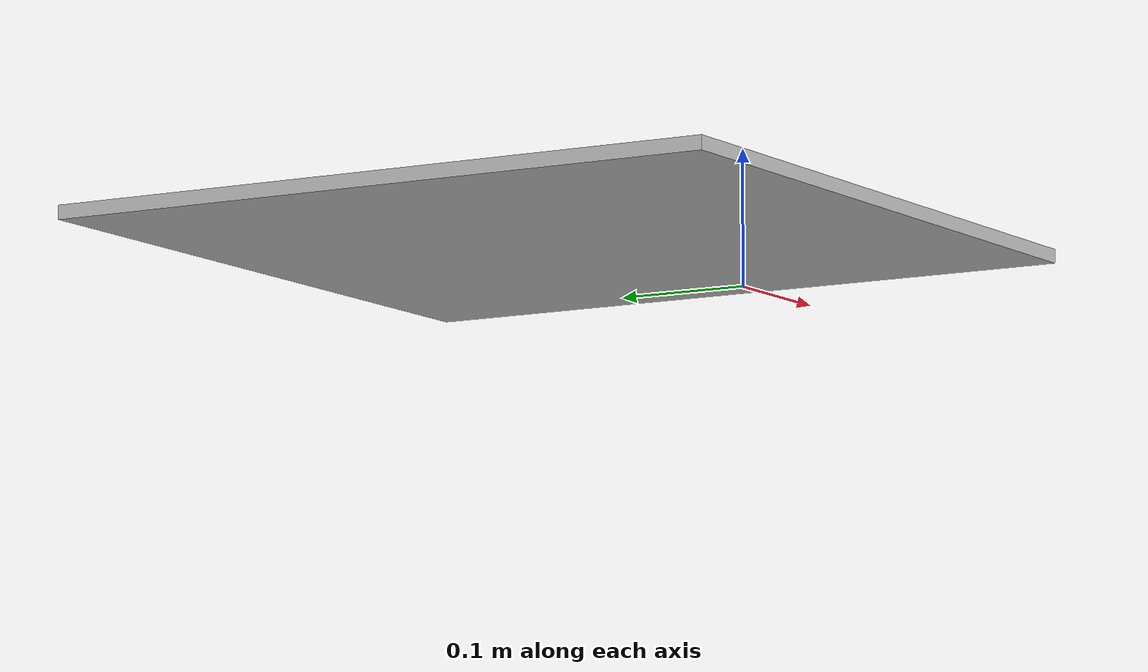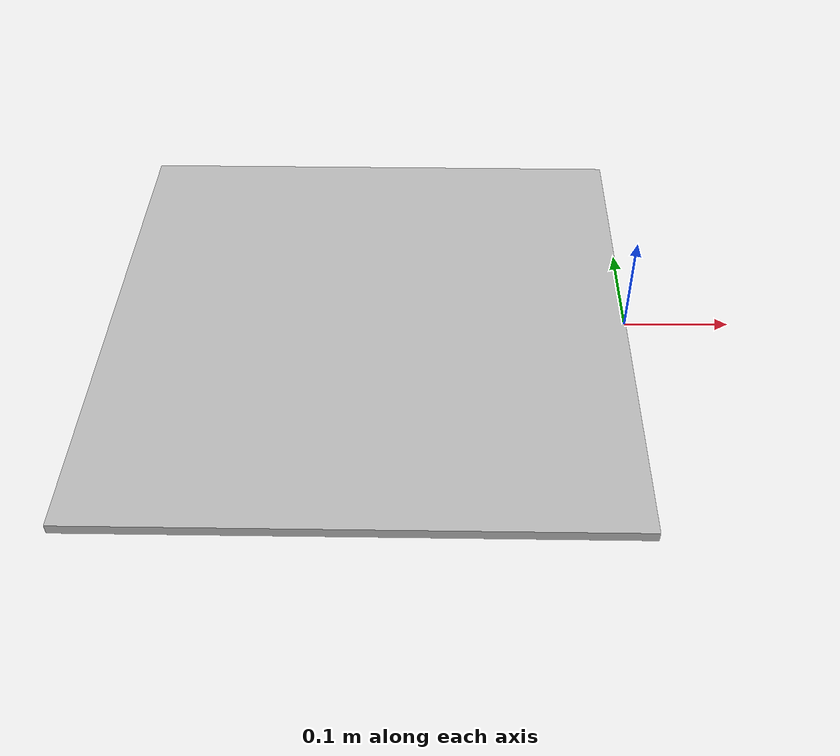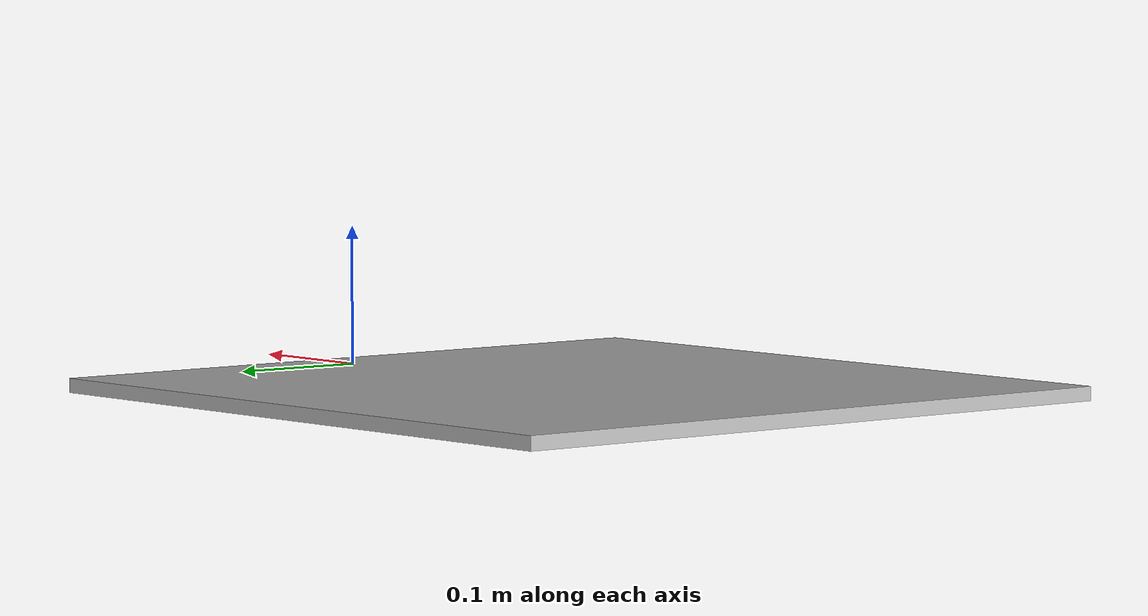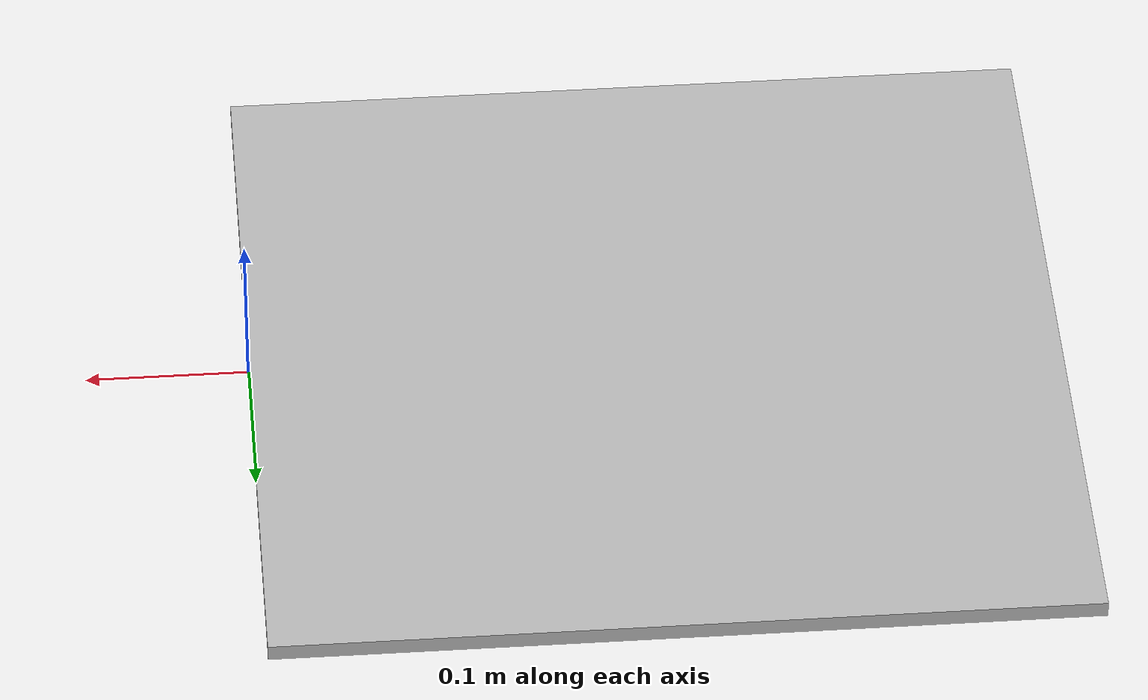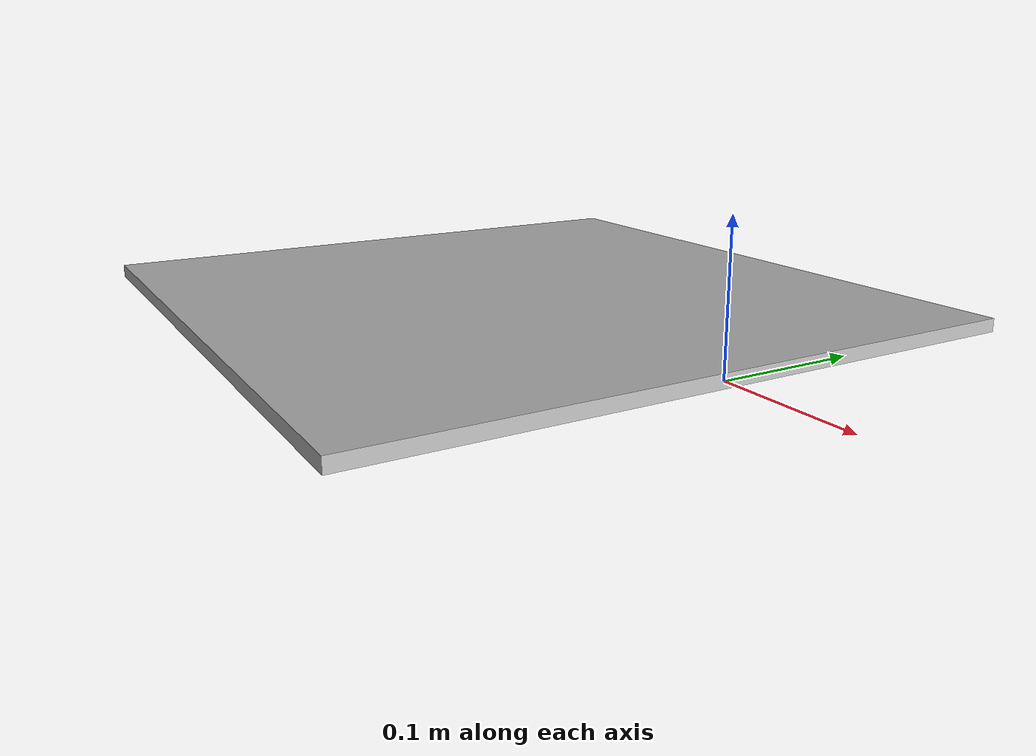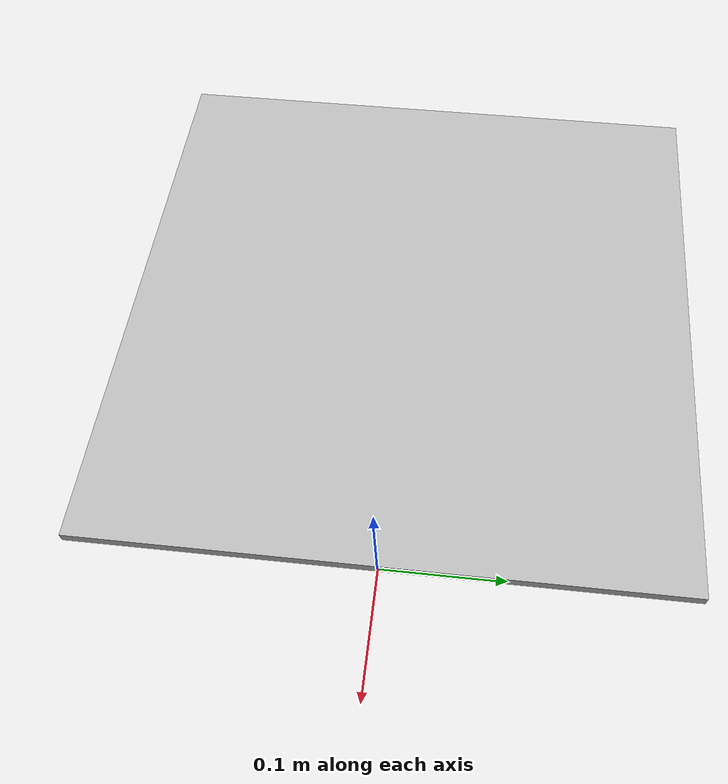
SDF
<?xml version="1.0" ?>
<sdf version="1.6">
  <model name="Marker0">
    <static>true</static>
    <link name="link">
      <pose>0 0 0 0 -1.570796 0</pose>
      <visual name="visual">
        <geometry>
          <mesh>
            <uri>model://marker0/meshes/Marker0.dae</uri>
          </mesh>

        </geometry>
      </visual>
    </link>
  </model>
</sdf>
